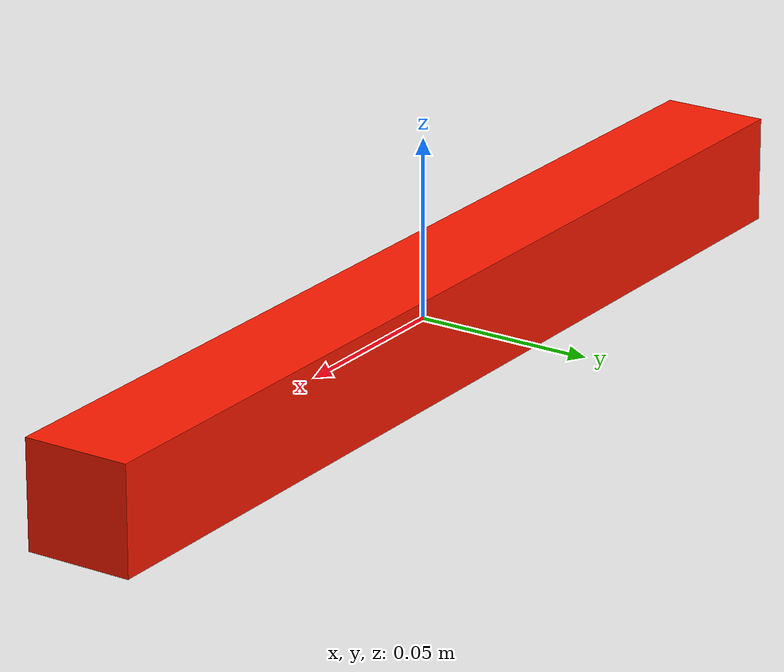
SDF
<?xml version="1.0" ?>
<sdf version="1.5">
    <model name="cherry_holder">
        <static>true</static>
        <pose>0 0 0 0 0 0</pose>
        <link name="body">
            <collision name="collision1">
                <geometry>
                <box>
                    <size>0.3 0.03 0.03 </size>
                </box>
                </geometry>
            </collision>
            <visual name="visual1">
                <geometry>
                <box>
                    <size>0.3 0.03 0.03 </size>
                </box>
                </geometry>
                <material>
                <ambient>1 0.1 0 1</ambient>
                <diffuse>1 0.1 0 1</diffuse>
                <specular>0.1 0.1 0.1 1</specular>
                <emissive>0 0 0 0</emissive>
                </material>
            </visual>
        </link>
    </model>
</sdf>
